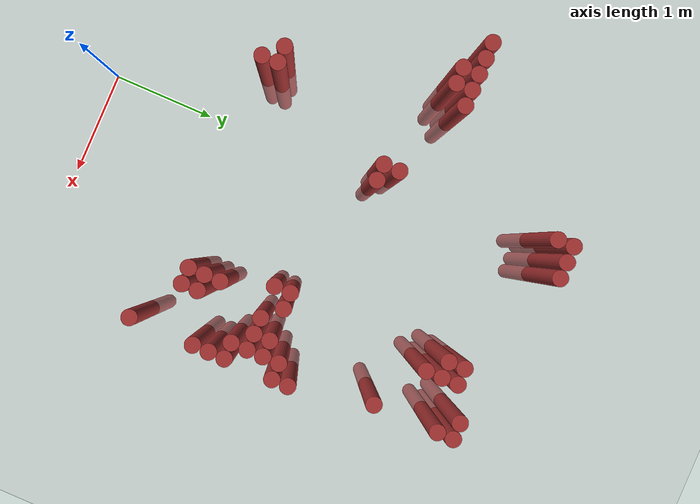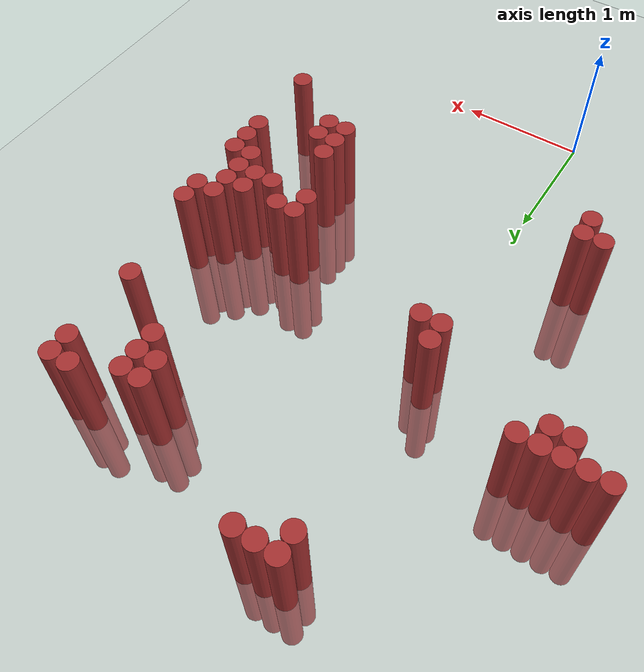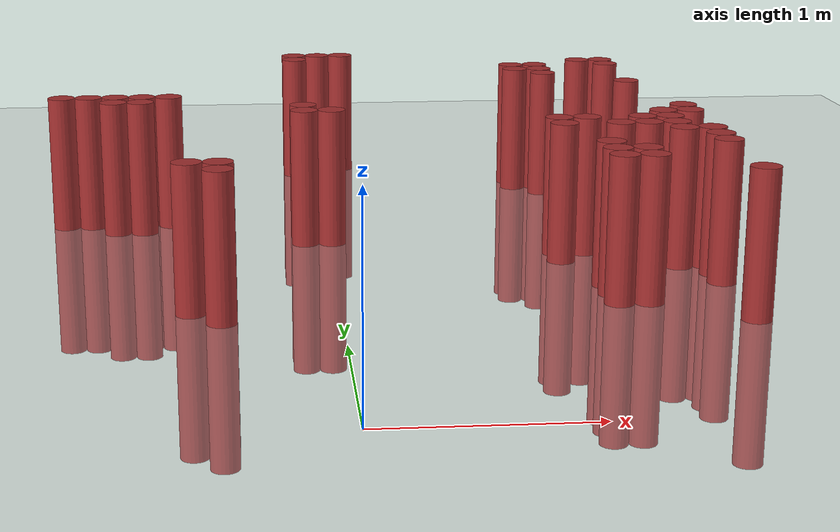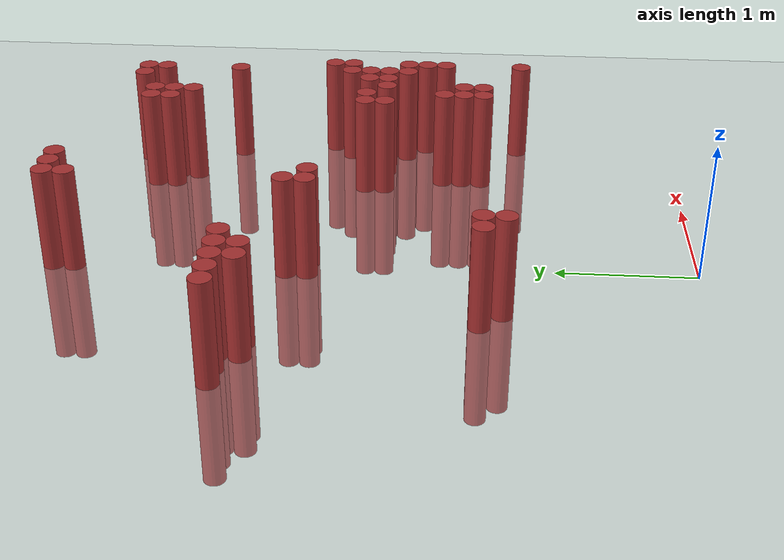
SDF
<sdf version="1.6">
 <world name="default">
  <model name="ground_plane">
   <static>1</static>
   <link name="link">
    <collision name="collision">
     <geometry><plane><normal>0 0 1</normal><size>100 100</size></plane></geometry>
     <surface><friction><ode><mu>100</mu><mu2>50</mu2></ode></friction></surface>
    </collision>
    <visual name="visual">
     <cast_shadows>0</cast_shadows>
     <geometry><plane><normal>0 0 1</normal><size>100 100</size></plane></geometry>
     <material>
      <script><uri>file://media/materials/scripts/gazebo.material</uri><name>Gazebo/Grey</name></script>
     </material>
    </visual>
   </link>
  </model>
  <model name="unit_cylinder_159">
   <static>1</static>
   <pose>-1.475000 3.175000 0.000000 0.000000 0.000000 0.000000</pose>
   <link name="link">
    <inertial>
     <mass>1</mass>
     <inertia><ixx>0.145833</ixx><ixy>0</ixy><ixz>0</ixz><iyy>0.145833</iyy><iyz>0</iyz><izz>0.125</izz></inertia>
    </inertial>
    <collision name="collision">
     <geometry><cylinder><radius>0.075000</radius><length>1.5</length></cylinder></geometry>
    </collision>
    <visual name="visual">
     <geometry><cylinder><radius>0.075000</radius><length>1.5</length></cylinder></geometry>
     <material>
      <ambient>0.648000 0.192000 0.192000 1</ambient>
      <diffuse>0.648000 0.192000 0.192000 1</diffuse>
     </material>
     <material>
      <script><name>Gazebo/Grey</name><uri>file://media/materials/scripts/gazebo.material</uri></script>
     </material>
    </visual>
   </link>
  </model>
  <model name="unit_cylinder_160">
   <static>1</static>
   <pose>-1.325000 3.175000 0.000000 0.000000 0.000000 0.000000</pose>
   <link name="link">
    <inertial>
     <mass>1</mass>
     <inertia><ixx>0.145833</ixx><ixy>0</ixy><ixz>0</ixz><iyy>0.145833</iyy><iyz>0</iyz><izz>0.125</izz></inertia>
    </inertial>
    <collision name="collision">
     <geometry><cylinder><radius>0.075000</radius><length>1.5</length></cylinder></geometry>
    </collision>
    <visual name="visual">
     <geometry><cylinder><radius>0.075000</radius><length>1.5</length></cylinder></geometry>
     <material>
      <ambient>0.648000 0.192000 0.192000 1</ambient>
      <diffuse>0.648000 0.192000 0.192000 1</diffuse>
     </material>
     <material>
      <script><name>Gazebo/Grey</name><uri>file://media/materials/scripts/gazebo.material</uri></script>
     </material>
    </visual>
   </link>
  </model>
  <model name="unit_cylinder_161">
   <static>1</static>
   <pose>-1.175000 3.025000 0.000000 0.000000 0.000000 0.000000</pose>
   <link name="link">
    <inertial>
     <mass>1</mass>
     <inertia><ixx>0.145833</ixx><ixy>0</ixy><ixz>0</ixz><iyy>0.145833</iyy><iyz>0</iyz><izz>0.125</izz></inertia>
    </inertial>
    <collision name="collision">
     <geometry><cylinder><radius>0.075000</radius><length>1.5</length></cylinder></geometry>
    </collision>
    <visual name="visual">
     <geometry><cylinder><radius>0.075000</radius><length>1.5</length></cylinder></geometry>
     <material>
      <ambient>0.648000 0.192000 0.192000 1</ambient>
      <diffuse>0.648000 0.192000 0.192000 1</diffuse>
     </material>
     <material>
      <script><name>Gazebo/Grey</name><uri>file://media/materials/scripts/gazebo.material</uri></script>
     </material>
    </visual>
   </link>
  </model>
  <model name="unit_cylinder_162">
   <static>1</static>
   <pose>-1.175000 3.175000 0.000000 0.000000 0.000000 0.000000</pose>
   <link name="link">
    <inertial>
     <mass>1</mass>
     <inertia><ixx>0.145833</ixx><ixy>0</ixy><ixz>0</ixz><iyy>0.145833</iyy><iyz>0</iyz><izz>0.125</izz></inertia>
    </inertial>
    <collision name="collision">
     <geometry><cylinder><radius>0.075000</radius><length>1.5</length></cylinder></geometry>
    </collision>
    <visual name="visual">
     <geometry><cylinder><radius>0.075000</radius><length>1.5</length></cylinder></geometry>
     <material>
      <ambient>0.648000 0.192000 0.192000 1</ambient>
      <diffuse>0.648000 0.192000 0.192000 1</diffuse>
     </material>
     <material>
      <script><name>Gazebo/Grey</name><uri>file://media/materials/scripts/gazebo.material</uri></script>
     </material>
    </visual>
   </link>
  </model>
  <model name="unit_cylinder_163">
   <static>1</static>
   <pose>-1.025000 3.025000 0.000000 0.000000 0.000000 0.000000</pose>
   <link name="link">
    <inertial>
     <mass>1</mass>
     <inertia><ixx>0.145833</ixx><ixy>0</ixy><ixz>0</ixz><iyy>0.145833</iyy><iyz>0</iyz><izz>0.125</izz></inertia>
    </inertial>
    <collision name="collision">
     <geometry><cylinder><radius>0.075000</radius><length>1.5</length></cylinder></geometry>
    </collision>
    <visual name="visual">
     <geometry><cylinder><radius>0.075000</radius><length>1.5</length></cylinder></geometry>
     <material>
      <ambient>0.648000 0.192000 0.192000 1</ambient>
      <diffuse>0.648000 0.192000 0.192000 1</diffuse>
     </material>
     <material>
      <script><name>Gazebo/Grey</name><uri>file://media/materials/scripts/gazebo.material</uri></script>
     </material>
    </visual>
   </link>
  </model>
  <model name="unit_cylinder_164">
   <static>1</static>
   <pose>-1.025000 3.175000 0.000000 0.000000 0.000000 0.000000</pose>
   <link name="link">
    <inertial>
     <mass>1</mass>
     <inertia><ixx>0.145833</ixx><ixy>0</ixy><ixz>0</ixz><iyy>0.145833</iyy><iyz>0</iyz><izz>0.125</izz></inertia>
    </inertial>
    <collision name="collision">
     <geometry><cylinder><radius>0.075000</radius><length>1.5</length></cylinder></geometry>
    </collision>
    <visual name="visual">
     <geometry><cylinder><radius>0.075000</radius><length>1.5</length></cylinder></geometry>
     <material>
      <ambient>0.648000 0.192000 0.192000 1</ambient>
      <diffuse>0.648000 0.192000 0.192000 1</diffuse>
     </material>
     <material>
      <script><name>Gazebo/Grey</name><uri>file://media/materials/scripts/gazebo.material</uri></script>
     </material>
    </visual>
   </link>
  </model>
  <model name="unit_cylinder_165">
   <static>1</static>
   <pose>-0.875000 3.175000 0.000000 0.000000 0.000000 0.000000</pose>
   <link name="link">
    <inertial>
     <mass>1</mass>
     <inertia><ixx>0.145833</ixx><ixy>0</ixy><ixz>0</ixz><iyy>0.145833</iyy><iyz>0</iyz><izz>0.125</izz></inertia>
    </inertial>
    <collision name="collision">
     <geometry><cylinder><radius>0.075000</radius><length>1.5</length></cylinder></geometry>
    </collision>
    <visual name="visual">
     <geometry><cylinder><radius>0.075000</radius><length>1.5</length></cylinder></geometry>
     <material>
      <ambient>0.648000 0.192000 0.192000 1</ambient>
      <diffuse>0.648000 0.192000 0.192000 1</diffuse>
     </material>
     <material>
      <script><name>Gazebo/Grey</name><uri>file://media/materials/scripts/gazebo.material</uri></script>
     </material>
    </visual>
   </link>
  </model>
  <model name="unit_cylinder_166">
   <static>1</static>
   <pose>-0.725000 1.525000 0.000000 0.000000 0.000000 0.000000</pose>
   <link name="link">
    <inertial>
     <mass>1</mass>
     <inertia><ixx>0.145833</ixx><ixy>0</ixy><ixz>0</ixz><iyy>0.145833</iyy><iyz>0</iyz><izz>0.125</izz></inertia>
    </inertial>
    <collision name="collision">
     <geometry><cylinder><radius>0.075000</radius><length>1.5</length></cylinder></geometry>
    </collision>
    <visual name="visual">
     <geometry><cylinder><radius>0.075000</radius><length>1.5</length></cylinder></geometry>
     <material>
      <ambient>0.648000 0.192000 0.192000 1</ambient>
      <diffuse>0.648000 0.192000 0.192000 1</diffuse>
     </material>
     <material>
      <script><name>Gazebo/Grey</name><uri>file://media/materials/scripts/gazebo.material</uri></script>
     </material>
    </visual>
   </link>
  </model>
  <model name="unit_cylinder_167">
   <static>1</static>
   <pose>-0.575000 1.375000 0.000000 0.000000 0.000000 0.000000</pose>
   <link name="link">
    <inertial>
     <mass>1</mass>
     <inertia><ixx>0.145833</ixx><ixy>0</ixy><ixz>0</ixz><iyy>0.145833</iyy><iyz>0</iyz><izz>0.125</izz></inertia>
    </inertial>
    <collision name="collision">
     <geometry><cylinder><radius>0.075000</radius><length>1.5</length></cylinder></geometry>
    </collision>
    <visual name="visual">
     <geometry><cylinder><radius>0.075000</radius><length>1.5</length></cylinder></geometry>
     <material>
      <ambient>0.648000 0.192000 0.192000 1</ambient>
      <diffuse>0.648000 0.192000 0.192000 1</diffuse>
     </material>
     <material>
      <script><name>Gazebo/Grey</name><uri>file://media/materials/scripts/gazebo.material</uri></script>
     </material>
    </visual>
   </link>
  </model>
  <model name="unit_cylinder_168">
   <static>1</static>
   <pose>-0.575000 1.525000 0.000000 0.000000 0.000000 0.000000</pose>
   <link name="link">
    <inertial>
     <mass>1</mass>
     <inertia><ixx>0.145833</ixx><ixy>0</ixy><ixz>0</ixz><iyy>0.145833</iyy><iyz>0</iyz><izz>0.125</izz></inertia>
    </inertial>
    <collision name="collision">
     <geometry><cylinder><radius>0.075000</radius><length>1.5</length></cylinder></geometry>
    </collision>
    <visual name="visual">
     <geometry><cylinder><radius>0.075000</radius><length>1.5</length></cylinder></geometry>
     <material>
      <ambient>0.648000 0.192000 0.192000 1</ambient>
      <diffuse>0.648000 0.192000 0.192000 1</diffuse>
     </material>
     <material>
      <script><name>Gazebo/Grey</name><uri>file://media/materials/scripts/gazebo.material</uri></script>
     </material>
    </visual>
   </link>
  </model>
  <model name="unit_cylinder_177">
   <static>1</static>
   <pose>-0.125000 2.725000 0.000000 0.000000 0.000000 0.000000</pose>
   <link name="link">
    <inertial>
     <mass>1</mass>
     <inertia><ixx>0.145833</ixx><ixy>0</ixy><ixz>0</ixz><iyy>0.145833</iyy><iyz>0</iyz><izz>0.125</izz></inertia>
    </inertial>
    <collision name="collision">
     <geometry><cylinder><radius>0.075000</radius><length>1.5</length></cylinder></geometry>
    </collision>
    <visual name="visual">
     <geometry><cylinder><radius>0.075000</radius><length>1.5</length></cylinder></geometry>
     <material>
      <ambient>0.648000 0.192000 0.192000 1</ambient>
      <diffuse>0.648000 0.192000 0.192000 1</diffuse>
     </material>
     <material>
      <script><name>Gazebo/Grey</name><uri>file://media/materials/scripts/gazebo.material</uri></script>
     </material>
    </visual>
   </link>
  </model>
  <model name="unit_cylinder_178">
   <static>1</static>
   <pose>-0.125000 2.875000 0.000000 0.000000 0.000000 0.000000</pose>
   <link name="link">
    <inertial>
     <mass>1</mass>
     <inertia><ixx>0.145833</ixx><ixy>0</ixy><ixz>0</ixz><iyy>0.145833</iyy><iyz>0</iyz><izz>0.125</izz></inertia>
    </inertial>
    <collision name="collision">
     <geometry><cylinder><radius>0.075000</radius><length>1.5</length></cylinder></geometry>
    </collision>
    <visual name="visual">
     <geometry><cylinder><radius>0.075000</radius><length>1.5</length></cylinder></geometry>
     <material>
      <ambient>0.648000 0.192000 0.192000 1</ambient>
      <diffuse>0.648000 0.192000 0.192000 1</diffuse>
     </material>
     <material>
      <script><name>Gazebo/Grey</name><uri>file://media/materials/scripts/gazebo.material</uri></script>
     </material>
    </visual>
   </link>
  </model>
  <model name="unit_cylinder_179">
   <static>1</static>
   <pose>-0.125000 4.375000 0.000000 0.000000 0.000000 0.000000</pose>
   <link name="link">
    <inertial>
     <mass>1</mass>
     <inertia><ixx>0.145833</ixx><ixy>0</ixy><ixz>0</ixz><iyy>0.145833</iyy><iyz>0</iyz><izz>0.125</izz></inertia>
    </inertial>
    <collision name="collision">
     <geometry><cylinder><radius>0.075000</radius><length>1.5</length></cylinder></geometry>
    </collision>
    <visual name="visual">
     <geometry><cylinder><radius>0.075000</radius><length>1.5</length></cylinder></geometry>
     <material>
      <ambient>0.648000 0.192000 0.192000 1</ambient>
      <diffuse>0.648000 0.192000 0.192000 1</diffuse>
     </material>
     <material>
      <script><name>Gazebo/Grey</name><uri>file://media/materials/scripts/gazebo.material</uri></script>
     </material>
    </visual>
   </link>
  </model>
  <model name="unit_cylinder_180">
   <static>1</static>
   <pose>-0.125000 4.525000 0.000000 0.000000 0.000000 0.000000</pose>
   <link name="link">
    <inertial>
     <mass>1</mass>
     <inertia><ixx>0.145833</ixx><ixy>0</ixy><ixz>0</ixz><iyy>0.145833</iyy><iyz>0</iyz><izz>0.125</izz></inertia>
    </inertial>
    <collision name="collision">
     <geometry><cylinder><radius>0.075000</radius><length>1.5</length></cylinder></geometry>
    </collision>
    <visual name="visual">
     <geometry><cylinder><radius>0.075000</radius><length>1.5</length></cylinder></geometry>
     <material>
      <ambient>0.648000 0.192000 0.192000 1</ambient>
      <diffuse>0.648000 0.192000 0.192000 1</diffuse>
     </material>
     <material>
      <script><name>Gazebo/Grey</name><uri>file://media/materials/scripts/gazebo.material</uri></script>
     </material>
    </visual>
   </link>
  </model>
  <model name="unit_cylinder_185">
   <static>1</static>
   <pose>0.025000 2.725000 0.000000 0.000000 0.000000 0.000000</pose>
   <link name="link">
    <inertial>
     <mass>1</mass>
     <inertia><ixx>0.145833</ixx><ixy>0</ixy><ixz>0</ixz><iyy>0.145833</iyy><iyz>0</iyz><izz>0.125</izz></inertia>
    </inertial>
    <collision name="collision">
     <geometry><cylinder><radius>0.075000</radius><length>1.5</length></cylinder></geometry>
    </collision>
    <visual name="visual">
     <geometry><cylinder><radius>0.075000</radius><length>1.5</length></cylinder></geometry>
     <material>
      <ambient>0.648000 0.192000 0.192000 1</ambient>
      <diffuse>0.648000 0.192000 0.192000 1</diffuse>
     </material>
     <material>
      <script><name>Gazebo/Grey</name><uri>file://media/materials/scripts/gazebo.material</uri></script>
     </material>
    </visual>
   </link>
  </model>
  <model name="unit_cylinder_186">
   <static>1</static>
   <pose>0.025000 4.525000 0.000000 0.000000 0.000000 0.000000</pose>
   <link name="link">
    <inertial>
     <mass>1</mass>
     <inertia><ixx>0.145833</ixx><ixy>0</ixy><ixz>0</ixz><iyy>0.145833</iyy><iyz>0</iyz><izz>0.125</izz></inertia>
    </inertial>
    <collision name="collision">
     <geometry><cylinder><radius>0.075000</radius><length>1.5</length></cylinder></geometry>
    </collision>
    <visual name="visual">
     <geometry><cylinder><radius>0.075000</radius><length>1.5</length></cylinder></geometry>
     <material>
      <ambient>0.648000 0.192000 0.192000 1</ambient>
      <diffuse>0.648000 0.192000 0.192000 1</diffuse>
     </material>
     <material>
      <script><name>Gazebo/Grey</name><uri>file://media/materials/scripts/gazebo.material</uri></script>
     </material>
    </visual>
   </link>
  </model>
  <model name="unit_cylinder_191">
   <static>1</static>
   <pose>0.175000 4.525000 0.000000 0.000000 0.000000 0.000000</pose>
   <link name="link">
    <inertial>
     <mass>1</mass>
     <inertia><ixx>0.145833</ixx><ixy>0</ixy><ixz>0</ixz><iyy>0.145833</iyy><iyz>0</iyz><izz>0.125</izz></inertia>
    </inertial>
    <collision name="collision">
     <geometry><cylinder><radius>0.075000</radius><length>1.5</length></cylinder></geometry>
    </collision>
    <visual name="visual">
     <geometry><cylinder><radius>0.075000</radius><length>1.5</length></cylinder></geometry>
     <material>
      <ambient>0.648000 0.192000 0.192000 1</ambient>
      <diffuse>0.648000 0.192000 0.192000 1</diffuse>
     </material>
     <material>
      <script><name>Gazebo/Grey</name><uri>file://media/materials/scripts/gazebo.material</uri></script>
     </material>
    </visual>
   </link>
  </model>
  <model name="unit_cylinder_192">
   <static>1</static>
   <pose>1.225000 2.275000 0.000000 0.000000 0.000000 0.000000</pose>
   <link name="link">
    <inertial>
     <mass>1</mass>
     <inertia><ixx>0.145833</ixx><ixy>0</ixy><ixz>0</ixz><iyy>0.145833</iyy><iyz>0</iyz><izz>0.125</izz></inertia>
    </inertial>
    <collision name="collision">
     <geometry><cylinder><radius>0.075000</radius><length>1.5</length></cylinder></geometry>
    </collision>
    <visual name="visual">
     <geometry><cylinder><radius>0.075000</radius><length>1.5</length></cylinder></geometry>
     <material>
      <ambient>0.648000 0.192000 0.192000 1</ambient>
      <diffuse>0.648000 0.192000 0.192000 1</diffuse>
     </material>
     <material>
      <script><name>Gazebo/Grey</name><uri>file://media/materials/scripts/gazebo.material</uri></script>
     </material>
    </visual>
   </link>
  </model>
  <model name="unit_cylinder_193">
   <static>1</static>
   <pose>1.225000 2.425000 0.000000 0.000000 0.000000 0.000000</pose>
   <link name="link">
    <inertial>
     <mass>1</mass>
     <inertia><ixx>0.145833</ixx><ixy>0</ixy><ixz>0</ixz><iyy>0.145833</iyy><iyz>0</iyz><izz>0.125</izz></inertia>
    </inertial>
    <collision name="collision">
     <geometry><cylinder><radius>0.075000</radius><length>1.5</length></cylinder></geometry>
    </collision>
    <visual name="visual">
     <geometry><cylinder><radius>0.075000</radius><length>1.5</length></cylinder></geometry>
     <material>
      <ambient>0.648000 0.192000 0.192000 1</ambient>
      <diffuse>0.648000 0.192000 0.192000 1</diffuse>
     </material>
     <material>
      <script><name>Gazebo/Grey</name><uri>file://media/materials/scripts/gazebo.material</uri></script>
     </material>
    </visual>
   </link>
  </model>
  <model name="unit_cylinder_194">
   <static>1</static>
   <pose>1.225000 3.925000 0.000000 0.000000 0.000000 0.000000</pose>
   <link name="link">
    <inertial>
     <mass>1</mass>
     <inertia><ixx>0.145833</ixx><ixy>0</ixy><ixz>0</ixz><iyy>0.145833</iyy><iyz>0</iyz><izz>0.125</izz></inertia>
    </inertial>
    <collision name="collision">
     <geometry><cylinder><radius>0.075000</radius><length>1.5</length></cylinder></geometry>
    </collision>
    <visual name="visual">
     <geometry><cylinder><radius>0.075000</radius><length>1.5</length></cylinder></geometry>
     <material>
      <ambient>0.648000 0.192000 0.192000 1</ambient>
      <diffuse>0.648000 0.192000 0.192000 1</diffuse>
     </material>
     <material>
      <script><name>Gazebo/Grey</name><uri>file://media/materials/scripts/gazebo.material</uri></script>
     </material>
    </visual>
   </link>
  </model>
  <model name="unit_cylinder_195">
   <static>1</static>
   <pose>1.225000 4.075000 0.000000 0.000000 0.000000 0.000000</pose>
   <link name="link">
    <inertial>
     <mass>1</mass>
     <inertia><ixx>0.145833</ixx><ixy>0</ixy><ixz>0</ixz><iyy>0.145833</iyy><iyz>0</iyz><izz>0.125</izz></inertia>
    </inertial>
    <collision name="collision">
     <geometry><cylinder><radius>0.075000</radius><length>1.5</length></cylinder></geometry>
    </collision>
    <visual name="visual">
     <geometry><cylinder><radius>0.075000</radius><length>1.5</length></cylinder></geometry>
     <material>
      <ambient>0.648000 0.192000 0.192000 1</ambient>
      <diffuse>0.648000 0.192000 0.192000 1</diffuse>
     </material>
     <material>
      <script><name>Gazebo/Grey</name><uri>file://media/materials/scripts/gazebo.material</uri></script>
     </material>
    </visual>
   </link>
  </model>
  <model name="unit_cylinder_196">
   <static>1</static>
   <pose>1.375000 1.525000 0.000000 0.000000 0.000000 0.000000</pose>
   <link name="link">
    <inertial>
     <mass>1</mass>
     <inertia><ixx>0.145833</ixx><ixy>0</ixy><ixz>0</ixz><iyy>0.145833</iyy><iyz>0</iyz><izz>0.125</izz></inertia>
    </inertial>
    <collision name="collision">
     <geometry><cylinder><radius>0.075000</radius><length>1.5</length></cylinder></geometry>
    </collision>
    <visual name="visual">
     <geometry><cylinder><radius>0.075000</radius><length>1.5</length></cylinder></geometry>
     <material>
      <ambient>0.648000 0.192000 0.192000 1</ambient>
      <diffuse>0.648000 0.192000 0.192000 1</diffuse>
     </material>
     <material>
      <script><name>Gazebo/Grey</name><uri>file://media/materials/scripts/gazebo.material</uri></script>
     </material>
    </visual>
   </link>
  </model>
  <model name="unit_cylinder_197">
   <static>1</static>
   <pose>1.375000 1.675000 0.000000 0.000000 0.000000 0.000000</pose>
   <link name="link">
    <inertial>
     <mass>1</mass>
     <inertia><ixx>0.145833</ixx><ixy>0</ixy><ixz>0</ixz><iyy>0.145833</iyy><iyz>0</iyz><izz>0.125</izz></inertia>
    </inertial>
    <collision name="collision">
     <geometry><cylinder><radius>0.075000</radius><length>1.5</length></cylinder></geometry>
    </collision>
    <visual name="visual">
     <geometry><cylinder><radius>0.075000</radius><length>1.5</length></cylinder></geometry>
     <material>
      <ambient>0.648000 0.192000 0.192000 1</ambient>
      <diffuse>0.648000 0.192000 0.192000 1</diffuse>
     </material>
     <material>
      <script><name>Gazebo/Grey</name><uri>file://media/materials/scripts/gazebo.material</uri></script>
     </material>
    </visual>
   </link>
  </model>
  <model name="unit_cylinder_198">
   <static>1</static>
   <pose>1.375000 1.825000 0.000000 0.000000 0.000000 0.000000</pose>
   <link name="link">
    <inertial>
     <mass>1</mass>
     <inertia><ixx>0.145833</ixx><ixy>0</ixy><ixz>0</ixz><iyy>0.145833</iyy><iyz>0</iyz><izz>0.125</izz></inertia>
    </inertial>
    <collision name="collision">
     <geometry><cylinder><radius>0.075000</radius><length>1.5</length></cylinder></geometry>
    </collision>
    <visual name="visual">
     <geometry><cylinder><radius>0.075000</radius><length>1.5</length></cylinder></geometry>
     <material>
      <ambient>0.648000 0.192000 0.192000 1</ambient>
      <diffuse>0.648000 0.192000 0.192000 1</diffuse>
     </material>
     <material>
      <script><name>Gazebo/Grey</name><uri>file://media/materials/scripts/gazebo.material</uri></script>
     </material>
    </visual>
   </link>
  </model>
  <model name="unit_cylinder_199">
   <static>1</static>
   <pose>1.375000 2.425000 0.000000 0.000000 0.000000 0.000000</pose>
   <link name="link">
    <inertial>
     <mass>1</mass>
     <inertia><ixx>0.145833</ixx><ixy>0</ixy><ixz>0</ixz><iyy>0.145833</iyy><iyz>0</iyz><izz>0.125</izz></inertia>
    </inertial>
    <collision name="collision">
     <geometry><cylinder><radius>0.075000</radius><length>1.5</length></cylinder></geometry>
    </collision>
    <visual name="visual">
     <geometry><cylinder><radius>0.075000</radius><length>1.5</length></cylinder></geometry>
     <material>
      <ambient>0.648000 0.192000 0.192000 1</ambient>
      <diffuse>0.648000 0.192000 0.192000 1</diffuse>
     </material>
     <material>
      <script><name>Gazebo/Grey</name><uri>file://media/materials/scripts/gazebo.material</uri></script>
     </material>
    </visual>
   </link>
  </model>
  <model name="unit_cylinder_200">
   <static>1</static>
   <pose>1.375000 3.775000 0.000000 0.000000 0.000000 0.000000</pose>
   <link name="link">
    <inertial>
     <mass>1</mass>
     <inertia><ixx>0.145833</ixx><ixy>0</ixy><ixz>0</ixz><iyy>0.145833</iyy><iyz>0</iyz><izz>0.125</izz></inertia>
    </inertial>
    <collision name="collision">
     <geometry><cylinder><radius>0.075000</radius><length>1.5</length></cylinder></geometry>
    </collision>
    <visual name="visual">
     <geometry><cylinder><radius>0.075000</radius><length>1.5</length></cylinder></geometry>
     <material>
      <ambient>0.648000 0.192000 0.192000 1</ambient>
      <diffuse>0.648000 0.192000 0.192000 1</diffuse>
     </material>
     <material>
      <script><name>Gazebo/Grey</name><uri>file://media/materials/scripts/gazebo.material</uri></script>
     </material>
    </visual>
   </link>
  </model>
  <model name="unit_cylinder_201">
   <static>1</static>
   <pose>1.375000 3.925000 0.000000 0.000000 0.000000 0.000000</pose>
   <link name="link">
    <inertial>
     <mass>1</mass>
     <inertia><ixx>0.145833</ixx><ixy>0</ixy><ixz>0</ixz><iyy>0.145833</iyy><iyz>0</iyz><izz>0.125</izz></inertia>
    </inertial>
    <collision name="collision">
     <geometry><cylinder><radius>0.075000</radius><length>1.5</length></cylinder></geometry>
    </collision>
    <visual name="visual">
     <geometry><cylinder><radius>0.075000</radius><length>1.5</length></cylinder></geometry>
     <material>
      <ambient>0.648000 0.192000 0.192000 1</ambient>
      <diffuse>0.648000 0.192000 0.192000 1</diffuse>
     </material>
     <material>
      <script><name>Gazebo/Grey</name><uri>file://media/materials/scripts/gazebo.material</uri></script>
     </material>
    </visual>
   </link>
  </model>
  <model name="unit_cylinder_202">
   <static>1</static>
   <pose>1.375000 4.075000 0.000000 0.000000 0.000000 0.000000</pose>
   <link name="link">
    <inertial>
     <mass>1</mass>
     <inertia><ixx>0.145833</ixx><ixy>0</ixy><ixz>0</ixz><iyy>0.145833</iyy><iyz>0</iyz><izz>0.125</izz></inertia>
    </inertial>
    <collision name="collision">
     <geometry><cylinder><radius>0.075000</radius><length>1.5</length></cylinder></geometry>
    </collision>
    <visual name="visual">
     <geometry><cylinder><radius>0.075000</radius><length>1.5</length></cylinder></geometry>
     <material>
      <ambient>0.648000 0.192000 0.192000 1</ambient>
      <diffuse>0.648000 0.192000 0.192000 1</diffuse>
     </material>
     <material>
      <script><name>Gazebo/Grey</name><uri>file://media/materials/scripts/gazebo.material</uri></script>
     </material>
    </visual>
   </link>
  </model>
  <model name="unit_cylinder_203">
   <static>1</static>
   <pose>1.525000 1.525000 0.000000 0.000000 0.000000 0.000000</pose>
   <link name="link">
    <inertial>
     <mass>1</mass>
     <inertia><ixx>0.145833</ixx><ixy>0</ixy><ixz>0</ixz><iyy>0.145833</iyy><iyz>0</iyz><izz>0.125</izz></inertia>
    </inertial>
    <collision name="collision">
     <geometry><cylinder><radius>0.075000</radius><length>1.5</length></cylinder></geometry>
    </collision>
    <visual name="visual">
     <geometry><cylinder><radius>0.075000</radius><length>1.5</length></cylinder></geometry>
     <material>
      <ambient>0.648000 0.192000 0.192000 1</ambient>
      <diffuse>0.648000 0.192000 0.192000 1</diffuse>
     </material>
     <material>
      <script><name>Gazebo/Grey</name><uri>file://media/materials/scripts/gazebo.material</uri></script>
     </material>
    </visual>
   </link>
  </model>
  <model name="unit_cylinder_204">
   <static>1</static>
   <pose>1.525000 1.675000 0.000000 0.000000 0.000000 0.000000</pose>
   <link name="link">
    <inertial>
     <mass>1</mass>
     <inertia><ixx>0.145833</ixx><ixy>0</ixy><ixz>0</ixz><iyy>0.145833</iyy><iyz>0</iyz><izz>0.125</izz></inertia>
    </inertial>
    <collision name="collision">
     <geometry><cylinder><radius>0.075000</radius><length>1.5</length></cylinder></geometry>
    </collision>
    <visual name="visual">
     <geometry><cylinder><radius>0.075000</radius><length>1.5</length></cylinder></geometry>
     <material>
      <ambient>0.648000 0.192000 0.192000 1</ambient>
      <diffuse>0.648000 0.192000 0.192000 1</diffuse>
     </material>
     <material>
      <script><name>Gazebo/Grey</name><uri>file://media/materials/scripts/gazebo.material</uri></script>
     </material>
    </visual>
   </link>
  </model>
  <model name="unit_cylinder_205">
   <static>1</static>
   <pose>1.525000 2.275000 0.000000 0.000000 0.000000 0.000000</pose>
   <link name="link">
    <inertial>
     <mass>1</mass>
     <inertia><ixx>0.145833</ixx><ixy>0</ixy><ixz>0</ixz><iyy>0.145833</iyy><iyz>0</iyz><izz>0.125</izz></inertia>
    </inertial>
    <collision name="collision">
     <geometry><cylinder><radius>0.075000</radius><length>1.5</length></cylinder></geometry>
    </collision>
    <visual name="visual">
     <geometry><cylinder><radius>0.075000</radius><length>1.5</length></cylinder></geometry>
     <material>
      <ambient>0.648000 0.192000 0.192000 1</ambient>
      <diffuse>0.648000 0.192000 0.192000 1</diffuse>
     </material>
     <material>
      <script><name>Gazebo/Grey</name><uri>file://media/materials/scripts/gazebo.material</uri></script>
     </material>
    </visual>
   </link>
  </model>
  <model name="unit_cylinder_206">
   <static>1</static>
   <pose>1.675000 2.275000 0.000000 0.000000 0.000000 0.000000</pose>
   <link name="link">
    <inertial>
     <mass>1</mass>
     <inertia><ixx>0.145833</ixx><ixy>0</ixy><ixz>0</ixz><iyy>0.145833</iyy><iyz>0</iyz><izz>0.125</izz></inertia>
    </inertial>
    <collision name="collision">
     <geometry><cylinder><radius>0.075000</radius><length>1.5</length></cylinder></geometry>
    </collision>
    <visual name="visual">
     <geometry><cylinder><radius>0.075000</radius><length>1.5</length></cylinder></geometry>
     <material>
      <ambient>0.648000 0.192000 0.192000 1</ambient>
      <diffuse>0.648000 0.192000 0.192000 1</diffuse>
     </material>
     <material>
      <script><name>Gazebo/Grey</name><uri>file://media/materials/scripts/gazebo.material</uri></script>
     </material>
    </visual>
   </link>
  </model>
  <model name="unit_cylinder_207">
   <static>1</static>
   <pose>1.675000 2.425000 0.000000 0.000000 0.000000 0.000000</pose>
   <link name="link">
    <inertial>
     <mass>1</mass>
     <inertia><ixx>0.145833</ixx><ixy>0</ixy><ixz>0</ixz><iyy>0.145833</iyy><iyz>0</iyz><izz>0.125</izz></inertia>
    </inertial>
    <collision name="collision">
     <geometry><cylinder><radius>0.075000</radius><length>1.5</length></cylinder></geometry>
    </collision>
    <visual name="visual">
     <geometry><cylinder><radius>0.075000</radius><length>1.5</length></cylinder></geometry>
     <material>
      <ambient>0.648000 0.192000 0.192000 1</ambient>
      <diffuse>0.648000 0.192000 0.192000 1</diffuse>
     </material>
     <material>
      <script><name>Gazebo/Grey</name><uri>file://media/materials/scripts/gazebo.material</uri></script>
     </material>
    </visual>
   </link>
  </model>
  <model name="unit_cylinder_208">
   <static>1</static>
   <pose>1.675000 4.225000 0.000000 0.000000 0.000000 0.000000</pose>
   <link name="link">
    <inertial>
     <mass>1</mass>
     <inertia><ixx>0.145833</ixx><ixy>0</ixy><ixz>0</ixz><iyy>0.145833</iyy><iyz>0</iyz><izz>0.125</izz></inertia>
    </inertial>
    <collision name="collision">
     <geometry><cylinder><radius>0.075000</radius><length>1.5</length></cylinder></geometry>
    </collision>
    <visual name="visual">
     <geometry><cylinder><radius>0.075000</radius><length>1.5</length></cylinder></geometry>
     <material>
      <ambient>0.648000 0.192000 0.192000 1</ambient>
      <diffuse>0.648000 0.192000 0.192000 1</diffuse>
     </material>
     <material>
      <script><name>Gazebo/Grey</name><uri>file://media/materials/scripts/gazebo.material</uri></script>
     </material>
    </visual>
   </link>
  </model>
  <model name="unit_cylinder_210">
   <static>1</static>
   <pose>1.825000 2.125000 0.000000 0.000000 0.000000 0.000000</pose>
   <link name="link">
    <inertial>
     <mass>1</mass>
     <inertia><ixx>0.145833</ixx><ixy>0</ixy><ixz>0</ixz><iyy>0.145833</iyy><iyz>0</iyz><izz>0.125</izz></inertia>
    </inertial>
    <collision name="collision">
     <geometry><cylinder><radius>0.075000</radius><length>1.5</length></cylinder></geometry>
    </collision>
    <visual name="visual">
     <geometry><cylinder><radius>0.075000</radius><length>1.5</length></cylinder></geometry>
     <material>
      <ambient>0.648000 0.192000 0.192000 1</ambient>
      <diffuse>0.648000 0.192000 0.192000 1</diffuse>
     </material>
     <material>
      <script><name>Gazebo/Grey</name><uri>file://media/materials/scripts/gazebo.material</uri></script>
     </material>
    </visual>
   </link>
  </model>
  <model name="unit_cylinder_211">
   <static>1</static>
   <pose>1.825000 2.275000 0.000000 0.000000 0.000000 0.000000</pose>
   <link name="link">
    <inertial>
     <mass>1</mass>
     <inertia><ixx>0.145833</ixx><ixy>0</ixy><ixz>0</ixz><iyy>0.145833</iyy><iyz>0</iyz><izz>0.125</izz></inertia>
    </inertial>
    <collision name="collision">
     <geometry><cylinder><radius>0.075000</radius><length>1.5</length></cylinder></geometry>
    </collision>
    <visual name="visual">
     <geometry><cylinder><radius>0.075000</radius><length>1.5</length></cylinder></geometry>
     <material>
      <ambient>0.648000 0.192000 0.192000 1</ambient>
      <diffuse>0.648000 0.192000 0.192000 1</diffuse>
     </material>
     <material>
      <script><name>Gazebo/Grey</name><uri>file://media/materials/scripts/gazebo.material</uri></script>
     </material>
    </visual>
   </link>
  </model>
  <model name="unit_cylinder_212">
   <static>1</static>
   <pose>1.825000 2.425000 0.000000 0.000000 0.000000 0.000000</pose>
   <link name="link">
    <inertial>
     <mass>1</mass>
     <inertia><ixx>0.145833</ixx><ixy>0</ixy><ixz>0</ixz><iyy>0.145833</iyy><iyz>0</iyz><izz>0.125</izz></inertia>
    </inertial>
    <collision name="collision">
     <geometry><cylinder><radius>0.075000</radius><length>1.5</length></cylinder></geometry>
    </collision>
    <visual name="visual">
     <geometry><cylinder><radius>0.075000</radius><length>1.5</length></cylinder></geometry>
     <material>
      <ambient>0.648000 0.192000 0.192000 1</ambient>
      <diffuse>0.648000 0.192000 0.192000 1</diffuse>
     </material>
     <material>
      <script><name>Gazebo/Grey</name><uri>file://media/materials/scripts/gazebo.material</uri></script>
     </material>
    </visual>
   </link>
  </model>
  <model name="unit_cylinder_213">
   <static>1</static>
   <pose>1.825000 2.575000 0.000000 0.000000 0.000000 0.000000</pose>
   <link name="link">
    <inertial>
     <mass>1</mass>
     <inertia><ixx>0.145833</ixx><ixy>0</ixy><ixz>0</ixz><iyy>0.145833</iyy><iyz>0</iyz><izz>0.125</izz></inertia>
    </inertial>
    <collision name="collision">
     <geometry><cylinder><radius>0.075000</radius><length>1.5</length></cylinder></geometry>
    </collision>
    <visual name="visual">
     <geometry><cylinder><radius>0.075000</radius><length>1.5</length></cylinder></geometry>
     <material>
      <ambient>0.648000 0.192000 0.192000 1</ambient>
      <diffuse>0.648000 0.192000 0.192000 1</diffuse>
     </material>
     <material>
      <script><name>Gazebo/Grey</name><uri>file://media/materials/scripts/gazebo.material</uri></script>
     </material>
    </visual>
   </link>
  </model>
  <model name="unit_cylinder_214">
   <static>1</static>
   <pose>1.825000 3.475000 0.000000 0.000000 0.000000 0.000000</pose>
   <link name="link">
    <inertial>
     <mass>1</mass>
     <inertia><ixx>0.145833</ixx><ixy>0</ixy><ixz>0</ixz><iyy>0.145833</iyy><iyz>0</iyz><izz>0.125</izz></inertia>
    </inertial>
    <collision name="collision">
     <geometry><cylinder><radius>0.075000</radius><length>1.5</length></cylinder></geometry>
    </collision>
    <visual name="visual">
     <geometry><cylinder><radius>0.075000</radius><length>1.5</length></cylinder></geometry>
     <material>
      <ambient>0.648000 0.192000 0.192000 1</ambient>
      <diffuse>0.648000 0.192000 0.192000 1</diffuse>
     </material>
     <material>
      <script><name>Gazebo/Grey</name><uri>file://media/materials/scripts/gazebo.material</uri></script>
     </material>
    </visual>
   </link>
  </model>
  <model name="unit_cylinder_215">
   <static>1</static>
   <pose>1.825000 4.075000 0.000000 0.000000 0.000000 0.000000</pose>
   <link name="link">
    <inertial>
     <mass>1</mass>
     <inertia><ixx>0.145833</ixx><ixy>0</ixy><ixz>0</ixz><iyy>0.145833</iyy><iyz>0</iyz><izz>0.125</izz></inertia>
    </inertial>
    <collision name="collision">
     <geometry><cylinder><radius>0.075000</radius><length>1.5</length></cylinder></geometry>
    </collision>
    <visual name="visual">
     <geometry><cylinder><radius>0.075000</radius><length>1.5</length></cylinder></geometry>
     <material>
      <ambient>0.648000 0.192000 0.192000 1</ambient>
      <diffuse>0.648000 0.192000 0.192000 1</diffuse>
     </material>
     <material>
      <script><name>Gazebo/Grey</name><uri>file://media/materials/scripts/gazebo.material</uri></script>
     </material>
    </visual>
   </link>
  </model>
  <model name="unit_cylinder_216">
   <static>1</static>
   <pose>1.825000 4.225000 0.000000 0.000000 0.000000 0.000000</pose>
   <link name="link">
    <inertial>
     <mass>1</mass>
     <inertia><ixx>0.145833</ixx><ixy>0</ixy><ixz>0</ixz><iyy>0.145833</iyy><iyz>0</iyz><izz>0.125</izz></inertia>
    </inertial>
    <collision name="collision">
     <geometry><cylinder><radius>0.075000</radius><length>1.5</length></cylinder></geometry>
    </collision>
    <visual name="visual">
     <geometry><cylinder><radius>0.075000</radius><length>1.5</length></cylinder></geometry>
     <material>
      <ambient>0.648000 0.192000 0.192000 1</ambient>
      <diffuse>0.648000 0.192000 0.192000 1</diffuse>
     </material>
     <material>
      <script><name>Gazebo/Grey</name><uri>file://media/materials/scripts/gazebo.material</uri></script>
     </material>
    </visual>
   </link>
  </model>
  <model name="unit_cylinder_223">
   <static>1</static>
   <pose>1.975000 1.225000 0.000000 0.000000 0.000000 0.000000</pose>
   <link name="link">
    <inertial>
     <mass>1</mass>
     <inertia><ixx>0.145833</ixx><ixy>0</ixy><ixz>0</ixz><iyy>0.145833</iyy><iyz>0</iyz><izz>0.125</izz></inertia>
    </inertial>
    <collision name="collision">
     <geometry><cylinder><radius>0.075000</radius><length>1.5</length></cylinder></geometry>
    </collision>
    <visual name="visual">
     <geometry><cylinder><radius>0.075000</radius><length>1.5</length></cylinder></geometry>
     <material>
      <ambient>0.648000 0.192000 0.192000 1</ambient>
      <diffuse>0.648000 0.192000 0.192000 1</diffuse>
     </material>
     <material>
      <script><name>Gazebo/Grey</name><uri>file://media/materials/scripts/gazebo.material</uri></script>
     </material>
    </visual>
   </link>
  </model>
  <model name="unit_cylinder_224">
   <static>1</static>
   <pose>1.975000 1.825000 0.000000 0.000000 0.000000 0.000000</pose>
   <link name="link">
    <inertial>
     <mass>1</mass>
     <inertia><ixx>0.145833</ixx><ixy>0</ixy><ixz>0</ixz><iyy>0.145833</iyy><iyz>0</iyz><izz>0.125</izz></inertia>
    </inertial>
    <collision name="collision">
     <geometry><cylinder><radius>0.075000</radius><length>1.5</length></cylinder></geometry>
    </collision>
    <visual name="visual">
     <geometry><cylinder><radius>0.075000</radius><length>1.5</length></cylinder></geometry>
     <material>
      <ambient>0.648000 0.192000 0.192000 1</ambient>
      <diffuse>0.648000 0.192000 0.192000 1</diffuse>
     </material>
     <material>
      <script><name>Gazebo/Grey</name><uri>file://media/materials/scripts/gazebo.material</uri></script>
     </material>
    </visual>
   </link>
  </model>
  <model name="unit_cylinder_225">
   <static>1</static>
   <pose>1.975000 1.975000 0.000000 0.000000 0.000000 0.000000</pose>
   <link name="link">
    <inertial>
     <mass>1</mass>
     <inertia><ixx>0.145833</ixx><ixy>0</ixy><ixz>0</ixz><iyy>0.145833</iyy><iyz>0</iyz><izz>0.125</izz></inertia>
    </inertial>
    <collision name="collision">
     <geometry><cylinder><radius>0.075000</radius><length>1.5</length></cylinder></geometry>
    </collision>
    <visual name="visual">
     <geometry><cylinder><radius>0.075000</radius><length>1.5</length></cylinder></geometry>
     <material>
      <ambient>0.648000 0.192000 0.192000 1</ambient>
      <diffuse>0.648000 0.192000 0.192000 1</diffuse>
     </material>
     <material>
      <script><name>Gazebo/Grey</name><uri>file://media/materials/scripts/gazebo.material</uri></script>
     </material>
    </visual>
   </link>
  </model>
  <model name="unit_cylinder_226">
   <static>1</static>
   <pose>1.975000 2.125000 0.000000 0.000000 0.000000 0.000000</pose>
   <link name="link">
    <inertial>
     <mass>1</mass>
     <inertia><ixx>0.145833</ixx><ixy>0</ixy><ixz>0</ixz><iyy>0.145833</iyy><iyz>0</iyz><izz>0.125</izz></inertia>
    </inertial>
    <collision name="collision">
     <geometry><cylinder><radius>0.075000</radius><length>1.5</length></cylinder></geometry>
    </collision>
    <visual name="visual">
     <geometry><cylinder><radius>0.075000</radius><length>1.5</length></cylinder></geometry>
     <material>
      <ambient>0.648000 0.192000 0.192000 1</ambient>
      <diffuse>0.648000 0.192000 0.192000 1</diffuse>
     </material>
     <material>
      <script><name>Gazebo/Grey</name><uri>file://media/materials/scripts/gazebo.material</uri></script>
     </material>
    </visual>
   </link>
  </model>
  <model name="unit_cylinder_227">
   <static>1</static>
   <pose>1.975000 2.575000 0.000000 0.000000 0.000000 0.000000</pose>
   <link name="link">
    <inertial>
     <mass>1</mass>
     <inertia><ixx>0.145833</ixx><ixy>0</ixy><ixz>0</ixz><iyy>0.145833</iyy><iyz>0</iyz><izz>0.125</izz></inertia>
    </inertial>
    <collision name="collision">
     <geometry><cylinder><radius>0.075000</radius><length>1.5</length></cylinder></geometry>
    </collision>
    <visual name="visual">
     <geometry><cylinder><radius>0.075000</radius><length>1.5</length></cylinder></geometry>
     <material>
      <ambient>0.648000 0.192000 0.192000 1</ambient>
      <diffuse>0.648000 0.192000 0.192000 1</diffuse>
     </material>
     <material>
      <script><name>Gazebo/Grey</name><uri>file://media/materials/scripts/gazebo.material</uri></script>
     </material>
    </visual>
   </link>
  </model>
  <model name="unit_cylinder_228">
   <static>1</static>
   <pose>1.975000 2.725000 0.000000 0.000000 0.000000 0.000000</pose>
   <link name="link">
    <inertial>
     <mass>1</mass>
     <inertia><ixx>0.145833</ixx><ixy>0</ixy><ixz>0</ixz><iyy>0.145833</iyy><iyz>0</iyz><izz>0.125</izz></inertia>
    </inertial>
    <collision name="collision">
     <geometry><cylinder><radius>0.075000</radius><length>1.5</length></cylinder></geometry>
    </collision>
    <visual name="visual">
     <geometry><cylinder><radius>0.075000</radius><length>1.5</length></cylinder></geometry>
     <material>
      <ambient>0.648000 0.192000 0.192000 1</ambient>
      <diffuse>0.648000 0.192000 0.192000 1</diffuse>
     </material>
     <material>
      <script><name>Gazebo/Grey</name><uri>file://media/materials/scripts/gazebo.material</uri></script>
     </material>
    </visual>
   </link>
  </model>
 </world>
</sdf>
